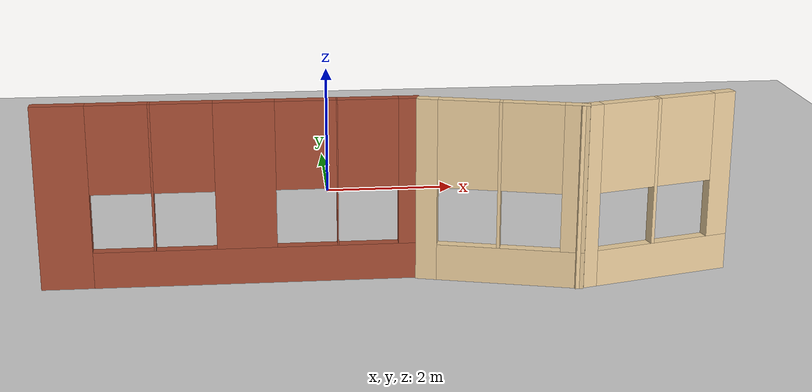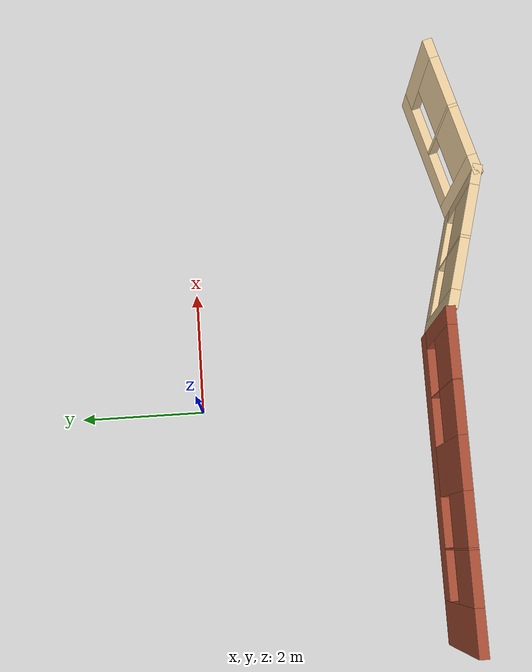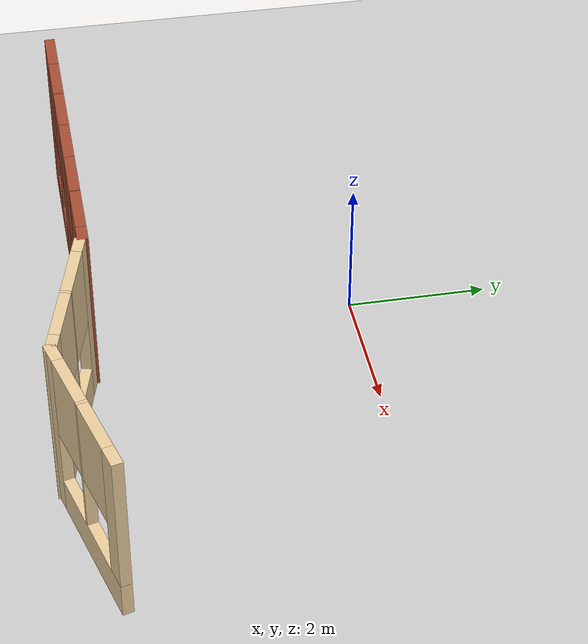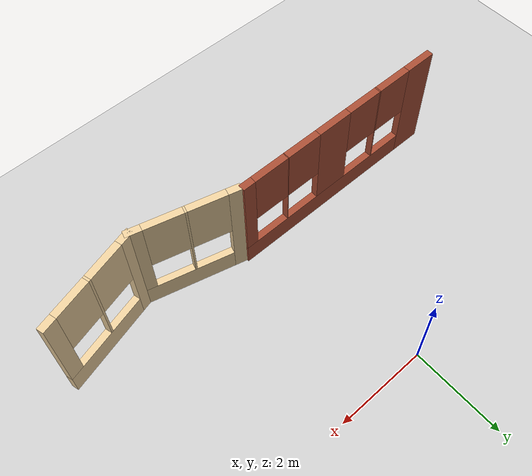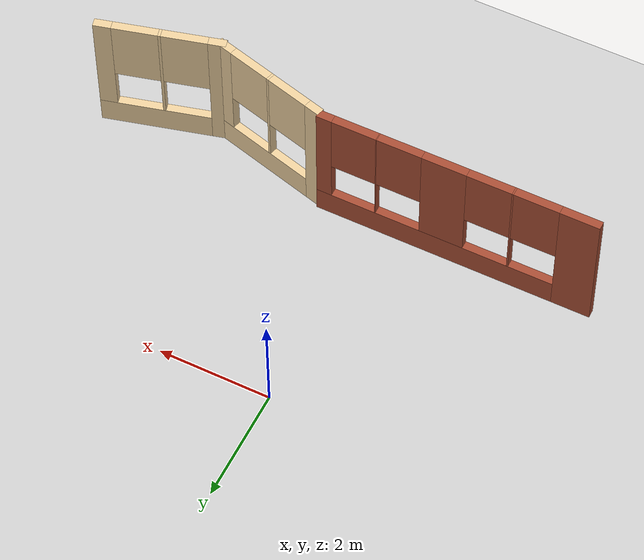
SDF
<sdf version="1.6">
 <world name="default">
  <model name="ground_plane">
   <static>1</static>
   <link name="link">
    <collision name="collision">
     <geometry><plane><normal>0 0 1</normal><size>100 100</size></plane></geometry>
     <surface>
      <contact><collide_bitmask>65535</collide_bitmask></contact>
      <friction><ode><mu>100</mu><mu2>50</mu2></ode></friction>
     </surface>
    </collision>
    <visual name="visual">
     <cast_shadows>0</cast_shadows>
     <geometry><plane><normal>0 0 1</normal><size>100 100</size></plane></geometry>
     <material>
      <script><uri>file://media/materials/scripts/gazebo.material</uri><name>Gazebo/Grey</name></script>
     </material>
    </visual>
   </link>
  </model>
  <model name="building">
   <link name="Wall_10">
    <pose>1.52733 -5.03045 0 0 0 -0.261799</pose>
    <visual name="Wall_10_Visual_2">
     <pose>-0.020899 0 1.5 0 -0 0</pose>
     <geometry><box><size>0.042901 0.15 2</size></box></geometry>
     <material>
      <script><uri>file://media/materials/scripts/gazebo.material</uri><name>Gazebo/Grey</name></script>
      <ambient>0.921569 0.807843 0.615686 1</ambient>
      <shader type="pixel"/>
      <diffuse>0.7 0.7 0.7 1</diffuse>
      <specular>0.01 0.01 0.01 1</specular>
      <emissive>0 0 0 1</emissive>
     </material>
     <meta><layer>0</layer></meta>
    </visual>
    <visual name="Wall_10_Visual_4">
     <pose>-0.442349 0 1.9 0 -0 0</pose>
     <geometry><box><size>0.8 0.15 1.2</size></box></geometry>
     <material>
      <script><uri>file://media/materials/scripts/gazebo.material</uri><name>Gazebo/Grey</name></script>
      <ambient>0.921569 0.807843 0.615686 1</ambient>
      <shader type="pixel"/>
      <diffuse>0.7 0.7 0.7 1</diffuse>
      <specular>0.01 0.01 0.01 1</specular>
      <emissive>0 0 0 1</emissive>
     </material>
     <meta><layer>0</layer></meta>
    </visual>
    <visual name="Wall_10_Visual_5">
     <pose>0.400552 0 1.9 0 -0 0</pose>
     <geometry><box><size>0.8 0.15 1.2</size></box></geometry>
     <material>
      <script><uri>file://media/materials/scripts/gazebo.material</uri><name>Gazebo/Grey</name></script>
      <ambient>0.921569 0.807843 0.615686 1</ambient>
      <shader type="pixel"/>
      <diffuse>0.7 0.7 0.7 1</diffuse>
      <specular>0.01 0.01 0.01 1</specular>
      <emissive>0 0 0 1</emissive>
     </material>
     <meta><layer>0</layer></meta>
    </visual>
    <visual name="Wall_10_Visual_0">
     <pose>-0.983675 0 1.25 0 -0 0</pose>
     <geometry><box><size>0.282651 0.15 2.5</size></box></geometry>
     <material>
      <script><uri>file://media/materials/scripts/gazebo.material</uri><name>Gazebo/Grey</name></script>
      <ambient>0.921569 0.807843 0.615686 1</ambient>
      <shader type="pixel"/>
      <diffuse>0.7 0.7 0.7 1</diffuse>
      <specular>0.01 0.01 0.01 1</specular>
      <emissive>0 0 0 1</emissive>
     </material>
     <meta><layer>0</layer></meta>
    </visual>
    <visual name="Wall_10_Visual_1">
     <pose>0.141325 0 0.25 0 -0 0</pose>
     <geometry><box><size>1.96735 0.15 0.5</size></box></geometry>
     <material>
      <script><uri>file://media/materials/scripts/gazebo.material</uri><name>Gazebo/Grey</name></script>
      <ambient>0.921569 0.807843 0.615686 1</ambient>
      <shader type="pixel"/>
      <diffuse>0.7 0.7 0.7 1</diffuse>
      <specular>0.01 0.01 0.01 1</specular>
      <emissive>0 0 0 1</emissive>
     </material>
     <meta><layer>0</layer></meta>
    </visual>
    <visual name="Wall_10_Visual_3">
     <pose>0.962776 0 1.5 0 -0 0</pose>
     <geometry><box><size>0.324448 0.15 2</size></box></geometry>
     <material>
      <script><uri>file://media/materials/scripts/gazebo.material</uri><name>Gazebo/Grey</name></script>
      <ambient>0.921569 0.807843 0.615686 1</ambient>
      <shader type="pixel"/>
      <diffuse>0.7 0.7 0.7 1</diffuse>
      <specular>0.01 0.01 0.01 1</specular>
      <emissive>0 0 0 1</emissive>
     </material>
     <meta><layer>0</layer></meta>
    </visual>
    <collision name="Wall_10_Collision_1">
     <pose>0.141325 0 0.25 0 -0 0</pose>
     <geometry><box><size>1.96735 0.15 0.5</size></box></geometry>
     <surface>
      <friction>
       <ode><mu>1</mu><mu2>1</mu2><fdir1>0 0 0</fdir1><slip1>0</slip1><slip2>0</slip2></ode>
       <torsional>
        <coefficient>1</coefficient>
        <patch_radius>0</patch_radius>
        <surface_radius>0</surface_radius>
        <use_patch_radius>1</use_patch_radius>
        <ode><slip>0</slip></ode>
       </torsional>
      </friction>
      <bounce><restitution_coefficient>0</restitution_coefficient><threshold>1e+06</threshold></bounce>
      <contact>
       <collide_without_contact>0</collide_without_contact>
       <collide_without_contact_bitmask>1</collide_without_contact_bitmask>
       <collide_bitmask>1</collide_bitmask>
       <ode>
        <soft_cfm>0</soft_cfm>
        <soft_erp>0.2</soft_erp>
        <kp>1e+13</kp>
        <kd>1</kd>
        <max_vel>0.01</max_vel>
        <min_depth>0</min_depth>
       </ode>
       <bullet>
        <split_impulse>1</split_impulse>
        <split_impulse_penetration_threshold>-0.01</split_impulse_penetration_threshold>
        <soft_cfm>0</soft_cfm>
        <soft_erp>0.2</soft_erp>
        <kp>1e+13</kp>
        <kd>1</kd>
       </bullet>
      </contact>
     </surface>
    </collision>
    <collision name="Wall_10_Collision_2">
     <pose>-0.020899 0 1.5 0 -0 0</pose>
     <geometry><box><size>0.042901 0.15 2</size></box></geometry>
     <surface>
      <friction>
       <ode><mu>1</mu><mu2>1</mu2><fdir1>0 0 0</fdir1><slip1>0</slip1><slip2>0</slip2></ode>
       <torsional>
        <coefficient>1</coefficient>
        <patch_radius>0</patch_radius>
        <surface_radius>0</surface_radius>
        <use_patch_radius>1</use_patch_radius>
        <ode><slip>0</slip></ode>
       </torsional>
      </friction>
      <bounce><restitution_coefficient>0</restitution_coefficient><threshold>1e+06</threshold></bounce>
      <contact>
       <collide_without_contact>0</collide_without_contact>
       <collide_without_contact_bitmask>1</collide_without_contact_bitmask>
       <collide_bitmask>1</collide_bitmask>
       <ode>
        <soft_cfm>0</soft_cfm>
        <soft_erp>0.2</soft_erp>
        <kp>1e+13</kp>
        <kd>1</kd>
        <max_vel>0.01</max_vel>
        <min_depth>0</min_depth>
       </ode>
       <bullet>
        <split_impulse>1</split_impulse>
        <split_impulse_penetration_threshold>-0.01</split_impulse_penetration_threshold>
        <soft_cfm>0</soft_cfm>
        <soft_erp>0.2</soft_erp>
        <kp>1e+13</kp>
        <kd>1</kd>
       </bullet>
      </contact>
     </surface>
    </collision>
    <collision name="Wall_10_Collision_3">
     <pose>0.962776 0 1.5 0 -0 0</pose>
     <geometry><box><size>0.324448 0.15 2</size></box></geometry>
     <surface>
      <friction>
       <ode><mu>1</mu><mu2>1</mu2><fdir1>0 0 0</fdir1><slip1>0</slip1><slip2>0</slip2></ode>
       <torsional>
        <coefficient>1</coefficient>
        <patch_radius>0</patch_radius>
        <surface_radius>0</surface_radius>
        <use_patch_radius>1</use_patch_radius>
        <ode><slip>0</slip></ode>
       </torsional>
      </friction>
      <bounce><restitution_coefficient>0</restitution_coefficient><threshold>1e+06</threshold></bounce>
      <contact>
       <collide_without_contact>0</collide_without_contact>
       <collide_without_contact_bitmask>1</collide_without_contact_bitmask>
       <collide_bitmask>1</collide_bitmask>
       <ode>
        <soft_cfm>0</soft_cfm>
        <soft_erp>0.2</soft_erp>
        <kp>1e+13</kp>
        <kd>1</kd>
        <max_vel>0.01</max_vel>
        <min_depth>0</min_depth>
       </ode>
       <bullet>
        <split_impulse>1</split_impulse>
        <split_impulse_penetration_threshold>-0.01</split_impulse_penetration_threshold>
        <soft_cfm>0</soft_cfm>
        <soft_erp>0.2</soft_erp>
        <kp>1e+13</kp>
        <kd>1</kd>
       </bullet>
      </contact>
     </surface>
    </collision>
    <collision name="Wall_10_Collision_5">
     <pose>0.400552 0 1.9 0 -0 0</pose>
     <geometry><box><size>0.8 0.15 1.2</size></box></geometry>
     <surface>
      <friction>
       <ode><mu>1</mu><mu2>1</mu2><fdir1>0 0 0</fdir1><slip1>0</slip1><slip2>0</slip2></ode>
       <torsional>
        <coefficient>1</coefficient>
        <patch_radius>0</patch_radius>
        <surface_radius>0</surface_radius>
        <use_patch_radius>1</use_patch_radius>
        <ode><slip>0</slip></ode>
       </torsional>
      </friction>
      <bounce><restitution_coefficient>0</restitution_coefficient><threshold>1e+06</threshold></bounce>
      <contact>
       <collide_without_contact>0</collide_without_contact>
       <collide_without_contact_bitmask>1</collide_without_contact_bitmask>
       <collide_bitmask>1</collide_bitmask>
       <ode>
        <soft_cfm>0</soft_cfm>
        <soft_erp>0.2</soft_erp>
        <kp>1e+13</kp>
        <kd>1</kd>
        <max_vel>0.01</max_vel>
        <min_depth>0</min_depth>
       </ode>
       <bullet>
        <split_impulse>1</split_impulse>
        <split_impulse_penetration_threshold>-0.01</split_impulse_penetration_threshold>
        <soft_cfm>0</soft_cfm>
        <soft_erp>0.2</soft_erp>
        <kp>1e+13</kp>
        <kd>1</kd>
       </bullet>
      </contact>
     </surface>
    </collision>
    <collision name="Wall_10_Collision_4">
     <pose>-0.442349 0 1.9 0 -0 0</pose>
     <geometry><box><size>0.8 0.15 1.2</size></box></geometry>
     <surface>
      <friction>
       <ode><mu>1</mu><mu2>1</mu2><fdir1>0 0 0</fdir1><slip1>0</slip1><slip2>0</slip2></ode>
       <torsional>
        <coefficient>1</coefficient>
        <patch_radius>0</patch_radius>
        <surface_radius>0</surface_radius>
        <use_patch_radius>1</use_patch_radius>
        <ode><slip>0</slip></ode>
       </torsional>
      </friction>
      <bounce><restitution_coefficient>0</restitution_coefficient><threshold>1e+06</threshold></bounce>
      <contact>
       <collide_without_contact>0</collide_without_contact>
       <collide_without_contact_bitmask>1</collide_without_contact_bitmask>
       <collide_bitmask>1</collide_bitmask>
       <ode>
        <soft_cfm>0</soft_cfm>
        <soft_erp>0.2</soft_erp>
        <kp>1e+13</kp>
        <kd>1</kd>
        <max_vel>0.01</max_vel>
        <min_depth>0</min_depth>
       </ode>
       <bullet>
        <split_impulse>1</split_impulse>
        <split_impulse_penetration_threshold>-0.01</split_impulse_penetration_threshold>
        <soft_cfm>0</soft_cfm>
        <soft_erp>0.2</soft_erp>
        <kp>1e+13</kp>
        <kd>1</kd>
       </bullet>
      </contact>
     </surface>
    </collision>
    <collision name="Wall_10_Collision_0">
     <pose>-0.983675 0 1.25 0 -0 0</pose>
     <geometry><box><size>0.282651 0.15 2.5</size></box></geometry>
     <surface>
      <friction>
       <ode><mu>1</mu><mu2>1</mu2><fdir1>0 0 0</fdir1><slip1>0</slip1><slip2>0</slip2></ode>
       <torsional>
        <coefficient>1</coefficient>
        <patch_radius>0</patch_radius>
        <surface_radius>0</surface_radius>
        <use_patch_radius>1</use_patch_radius>
        <ode><slip>0</slip></ode>
       </torsional>
      </friction>
      <bounce><restitution_coefficient>0</restitution_coefficient><threshold>1e+06</threshold></bounce>
      <contact>
       <collide_without_contact>0</collide_without_contact>
       <collide_without_contact_bitmask>1</collide_without_contact_bitmask>
       <collide_bitmask>1</collide_bitmask>
       <ode>
        <soft_cfm>0</soft_cfm>
        <soft_erp>0.2</soft_erp>
        <kp>1e+13</kp>
        <kd>1</kd>
        <max_vel>0.01</max_vel>
        <min_depth>0</min_depth>
       </ode>
       <bullet>
        <split_impulse>1</split_impulse>
        <split_impulse_penetration_threshold>-0.01</split_impulse_penetration_threshold>
        <soft_cfm>0</soft_cfm>
        <soft_erp>0.2</soft_erp>
        <kp>1e+13</kp>
        <kd>1</kd>
       </bullet>
      </contact>
     </surface>
    </collision>
   </link>
   <link name="Wall_11">
    <pose>3.56509 -5.03059 0 0 -0 0.259392</pose>
    <visual name="Wall_11_Visual_3">
     <pose>0.978893 0 1.5 0 -0 0</pose>
     <geometry><box><size>0.310149 0.15 2</size></box></geometry>
     <material>
      <script><uri>file://media/materials/scripts/gazebo.material</uri><name>Gazebo/Grey</name></script>
      <ambient>0.921569 0.807843 0.615686 1</ambient>
      <shader type="pixel"/>
      <diffuse>0.7 0.7 0.7 1</diffuse>
      <specular>0.01 0.01 0.01 1</specular>
      <emissive>0 0 0 1</emissive>
     </material>
     <meta><layer>0</layer></meta>
    </visual>
    <visual name="Wall_11_Visual_5">
     <pose>0.423818 0 1.9 0 -0 0</pose>
     <geometry><box><size>0.8 0.15 1.2</size></box></geometry>
     <material>
      <script><uri>file://media/materials/scripts/gazebo.material</uri><name>Gazebo/Grey</name></script>
      <ambient>0.921569 0.807843 0.615686 1</ambient>
      <shader type="pixel"/>
      <diffuse>0.7 0.7 0.7 1</diffuse>
      <specular>0.01 0.01 0.01 1</specular>
      <emissive>0 0 0 1</emissive>
     </material>
     <meta><layer>0</layer></meta>
    </visual>
    <visual name="Wall_11_Visual_2">
     <pose>0.000369 0 1.5 0 -0 0</pose>
     <geometry><box><size>0.0469 0.15 2</size></box></geometry>
     <material>
      <script><uri>file://media/materials/scripts/gazebo.material</uri><name>Gazebo/Grey</name></script>
      <ambient>0.921569 0.807843 0.615686 1</ambient>
      <shader type="pixel"/>
      <diffuse>0.7 0.7 0.7 1</diffuse>
      <specular>0.01 0.01 0.01 1</specular>
      <emissive>0 0 0 1</emissive>
     </material>
     <meta><layer>0</layer></meta>
    </visual>
    <visual name="Wall_11_Visual_0">
     <pose>-0.978524 0 1.25 0 -0 0</pose>
     <geometry><box><size>0.310887 0.15 2.5</size></box></geometry>
     <material>
      <script><uri>file://media/materials/scripts/gazebo.material</uri><name>Gazebo/Grey</name></script>
      <ambient>0.921569 0.807843 0.615686 1</ambient>
      <shader type="pixel"/>
      <diffuse>0.7 0.7 0.7 1</diffuse>
      <specular>0.01 0.01 0.01 1</specular>
      <emissive>0 0 0 1</emissive>
     </material>
     <meta><layer>0</layer></meta>
    </visual>
    <visual name="Wall_11_Visual_4">
     <pose>-0.423081 0 1.9 0 -0 0</pose>
     <geometry><box><size>0.8 0.15 1.2</size></box></geometry>
     <material>
      <script><uri>file://media/materials/scripts/gazebo.material</uri><name>Gazebo/Grey</name></script>
      <ambient>0.921569 0.807843 0.615686 1</ambient>
      <shader type="pixel"/>
      <diffuse>0.7 0.7 0.7 1</diffuse>
      <specular>0.01 0.01 0.01 1</specular>
      <emissive>0 0 0 1</emissive>
     </material>
     <meta><layer>0</layer></meta>
    </visual>
    <visual name="Wall_11_Visual_1">
     <pose>0.155443 0 0.25 0 -0 0</pose>
     <geometry><box><size>1.95705 0.15 0.5</size></box></geometry>
     <material>
      <script><uri>file://media/materials/scripts/gazebo.material</uri><name>Gazebo/Grey</name></script>
      <ambient>0.921569 0.807843 0.615686 1</ambient>
      <shader type="pixel"/>
      <diffuse>0.7 0.7 0.7 1</diffuse>
      <specular>0.01 0.01 0.01 1</specular>
      <emissive>0 0 0 1</emissive>
     </material>
     <meta><layer>0</layer></meta>
    </visual>
    <collision name="Wall_11_Collision_0">
     <pose>-0.978524 0 1.25 0 -0 0</pose>
     <geometry><box><size>0.310887 0.15 2.5</size></box></geometry>
     <surface>
      <friction>
       <ode><mu>1</mu><mu2>1</mu2><fdir1>0 0 0</fdir1><slip1>0</slip1><slip2>0</slip2></ode>
       <torsional>
        <coefficient>1</coefficient>
        <patch_radius>0</patch_radius>
        <surface_radius>0</surface_radius>
        <use_patch_radius>1</use_patch_radius>
        <ode><slip>0</slip></ode>
       </torsional>
      </friction>
      <bounce><restitution_coefficient>0</restitution_coefficient><threshold>1e+06</threshold></bounce>
      <contact>
       <collide_without_contact>0</collide_without_contact>
       <collide_without_contact_bitmask>1</collide_without_contact_bitmask>
       <collide_bitmask>1</collide_bitmask>
       <ode>
        <soft_cfm>0</soft_cfm>
        <soft_erp>0.2</soft_erp>
        <kp>1e+13</kp>
        <kd>1</kd>
        <max_vel>0.01</max_vel>
        <min_depth>0</min_depth>
       </ode>
       <bullet>
        <split_impulse>1</split_impulse>
        <split_impulse_penetration_threshold>-0.01</split_impulse_penetration_threshold>
        <soft_cfm>0</soft_cfm>
        <soft_erp>0.2</soft_erp>
        <kp>1e+13</kp>
        <kd>1</kd>
       </bullet>
      </contact>
     </surface>
    </collision>
    <collision name="Wall_11_Collision_3">
     <pose>0.978893 0 1.5 0 -0 0</pose>
     <geometry><box><size>0.310149 0.15 2</size></box></geometry>
     <surface>
      <friction>
       <ode><mu>1</mu><mu2>1</mu2><fdir1>0 0 0</fdir1><slip1>0</slip1><slip2>0</slip2></ode>
       <torsional>
        <coefficient>1</coefficient>
        <patch_radius>0</patch_radius>
        <surface_radius>0</surface_radius>
        <use_patch_radius>1</use_patch_radius>
        <ode><slip>0</slip></ode>
       </torsional>
      </friction>
      <bounce><restitution_coefficient>0</restitution_coefficient><threshold>1e+06</threshold></bounce>
      <contact>
       <collide_without_contact>0</collide_without_contact>
       <collide_without_contact_bitmask>1</collide_without_contact_bitmask>
       <collide_bitmask>1</collide_bitmask>
       <ode>
        <soft_cfm>0</soft_cfm>
        <soft_erp>0.2</soft_erp>
        <kp>1e+13</kp>
        <kd>1</kd>
        <max_vel>0.01</max_vel>
        <min_depth>0</min_depth>
       </ode>
       <bullet>
        <split_impulse>1</split_impulse>
        <split_impulse_penetration_threshold>-0.01</split_impulse_penetration_threshold>
        <soft_cfm>0</soft_cfm>
        <soft_erp>0.2</soft_erp>
        <kp>1e+13</kp>
        <kd>1</kd>
       </bullet>
      </contact>
     </surface>
    </collision>
    <collision name="Wall_11_Collision_1">
     <pose>0.155443 0 0.25 0 -0 0</pose>
     <geometry><box><size>1.95705 0.15 0.5</size></box></geometry>
     <surface>
      <friction>
       <ode><mu>1</mu><mu2>1</mu2><fdir1>0 0 0</fdir1><slip1>0</slip1><slip2>0</slip2></ode>
       <torsional>
        <coefficient>1</coefficient>
        <patch_radius>0</patch_radius>
        <surface_radius>0</surface_radius>
        <use_patch_radius>1</use_patch_radius>
        <ode><slip>0</slip></ode>
       </torsional>
      </friction>
      <bounce><restitution_coefficient>0</restitution_coefficient><threshold>1e+06</threshold></bounce>
      <contact>
       <collide_without_contact>0</collide_without_contact>
       <collide_without_contact_bitmask>1</collide_without_contact_bitmask>
       <collide_bitmask>1</collide_bitmask>
       <ode>
        <soft_cfm>0</soft_cfm>
        <soft_erp>0.2</soft_erp>
        <kp>1e+13</kp>
        <kd>1</kd>
        <max_vel>0.01</max_vel>
        <min_depth>0</min_depth>
       </ode>
       <bullet>
        <split_impulse>1</split_impulse>
        <split_impulse_penetration_threshold>-0.01</split_impulse_penetration_threshold>
        <soft_cfm>0</soft_cfm>
        <soft_erp>0.2</soft_erp>
        <kp>1e+13</kp>
        <kd>1</kd>
       </bullet>
      </contact>
     </surface>
    </collision>
    <collision name="Wall_11_Collision_2">
     <pose>0.000369 0 1.5 0 -0 0</pose>
     <geometry><box><size>0.0469 0.15 2</size></box></geometry>
     <surface>
      <friction>
       <ode><mu>1</mu><mu2>1</mu2><fdir1>0 0 0</fdir1><slip1>0</slip1><slip2>0</slip2></ode>
       <torsional>
        <coefficient>1</coefficient>
        <patch_radius>0</patch_radius>
        <surface_radius>0</surface_radius>
        <use_patch_radius>1</use_patch_radius>
        <ode><slip>0</slip></ode>
       </torsional>
      </friction>
      <bounce><restitution_coefficient>0</restitution_coefficient><threshold>1e+06</threshold></bounce>
      <contact>
       <collide_without_contact>0</collide_without_contact>
       <collide_without_contact_bitmask>1</collide_without_contact_bitmask>
       <collide_bitmask>1</collide_bitmask>
       <ode>
        <soft_cfm>0</soft_cfm>
        <soft_erp>0.2</soft_erp>
        <kp>1e+13</kp>
        <kd>1</kd>
        <max_vel>0.01</max_vel>
        <min_depth>0</min_depth>
       </ode>
       <bullet>
        <split_impulse>1</split_impulse>
        <split_impulse_penetration_threshold>-0.01</split_impulse_penetration_threshold>
        <soft_cfm>0</soft_cfm>
        <soft_erp>0.2</soft_erp>
        <kp>1e+13</kp>
        <kd>1</kd>
       </bullet>
      </contact>
     </surface>
    </collision>
    <collision name="Wall_11_Collision_4">
     <pose>-0.423081 0 1.9 0 -0 0</pose>
     <geometry><box><size>0.8 0.15 1.2</size></box></geometry>
     <surface>
      <friction>
       <ode><mu>1</mu><mu2>1</mu2><fdir1>0 0 0</fdir1><slip1>0</slip1><slip2>0</slip2></ode>
       <torsional>
        <coefficient>1</coefficient>
        <patch_radius>0</patch_radius>
        <surface_radius>0</surface_radius>
        <use_patch_radius>1</use_patch_radius>
        <ode><slip>0</slip></ode>
       </torsional>
      </friction>
      <bounce><restitution_coefficient>0</restitution_coefficient><threshold>1e+06</threshold></bounce>
      <contact>
       <collide_without_contact>0</collide_without_contact>
       <collide_without_contact_bitmask>1</collide_without_contact_bitmask>
       <collide_bitmask>1</collide_bitmask>
       <ode>
        <soft_cfm>0</soft_cfm>
        <soft_erp>0.2</soft_erp>
        <kp>1e+13</kp>
        <kd>1</kd>
        <max_vel>0.01</max_vel>
        <min_depth>0</min_depth>
       </ode>
       <bullet>
        <split_impulse>1</split_impulse>
        <split_impulse_penetration_threshold>-0.01</split_impulse_penetration_threshold>
        <soft_cfm>0</soft_cfm>
        <soft_erp>0.2</soft_erp>
        <kp>1e+13</kp>
        <kd>1</kd>
       </bullet>
      </contact>
     </surface>
    </collision>
    <collision name="Wall_11_Collision_5">
     <pose>0.423818 0 1.9 0 -0 0</pose>
     <geometry><box><size>0.8 0.15 1.2</size></box></geometry>
     <surface>
      <friction>
       <ode><mu>1</mu><mu2>1</mu2><fdir1>0 0 0</fdir1><slip1>0</slip1><slip2>0</slip2></ode>
       <torsional>
        <coefficient>1</coefficient>
        <patch_radius>0</patch_radius>
        <surface_radius>0</surface_radius>
        <use_patch_radius>1</use_patch_radius>
        <ode><slip>0</slip></ode>
       </torsional>
      </friction>
      <bounce><restitution_coefficient>0</restitution_coefficient><threshold>1e+06</threshold></bounce>
      <contact>
       <collide_without_contact>0</collide_without_contact>
       <collide_without_contact_bitmask>1</collide_without_contact_bitmask>
       <collide_bitmask>1</collide_bitmask>
       <ode>
        <soft_cfm>0</soft_cfm>
        <soft_erp>0.2</soft_erp>
        <kp>1e+13</kp>
        <kd>1</kd>
        <max_vel>0.01</max_vel>
        <min_depth>0</min_depth>
       </ode>
       <bullet>
        <split_impulse>1</split_impulse>
        <split_impulse_penetration_threshold>-0.01</split_impulse_penetration_threshold>
        <soft_cfm>0</soft_cfm>
        <soft_erp>0.2</soft_erp>
        <kp>1e+13</kp>
        <kd>1</kd>
       </bullet>
      </contact>
     </surface>
    </collision>
   </link>
   <link name="Wall_26">
    <pose>-2.03386 -4.70697 0 0 -0 0</pose>
    <visual name="Wall_26_Visual_7">
     <pose>-0.582527 0 1.9 0 -0 0</pose>
     <geometry><box><size>0.8 0.15 1.2</size></box></geometry>
     <material>
      <script><uri>file://media/materials/scripts/gazebo.material</uri><name>Gazebo/Bricks</name></script>
      <ambient>0.435294 0.796078 0.67451 1</ambient>
      <shader type="pixel"/>
      <diffuse>1 1 1 1</diffuse>
      <specular>0.2 0.2 0.2 1</specular>
      <emissive>0 0 0 1</emissive>
     </material>
     <meta><layer>0</layer></meta>
    </visual>
    <visual name="Wall_26_Visual_5">
     <pose>2.36886 0 1.5 0 -0 0</pose>
     <geometry><box><size>0.27736 0.15 2</size></box></geometry>
     <material>
      <script><uri>file://media/materials/scripts/gazebo.material</uri><name>Gazebo/Bricks</name></script>
      <ambient>0.435294 0.796078 0.67451 1</ambient>
      <shader type="pixel"/>
      <diffuse>1 1 1 1</diffuse>
      <specular>0.2 0.2 0.2 1</specular>
      <emissive>0 0 0 1</emissive>
     </material>
     <meta><layer>0</layer></meta>
    </visual>
    <visual name="Wall_26_Visual_6">
     <pose>-1.4116 0 1.9 0 -0 0</pose>
     <geometry><box><size>0.8 0.15 1.2</size></box></geometry>
     <material>
      <script><uri>file://media/materials/scripts/gazebo.material</uri><name>Gazebo/Bricks</name></script>
      <ambient>0.435294 0.796078 0.67451 1</ambient>
      <shader type="pixel"/>
      <diffuse>1 1 1 1</diffuse>
      <specular>0.2 0.2 0.2 1</specular>
      <emissive>0 0 0 1</emissive>
     </material>
     <meta><layer>0</layer></meta>
    </visual>
    <visual name="Wall_26_Visual_9">
     <pose>1.83018 0 1.9 0 -0 0</pose>
     <geometry><box><size>0.8 0.15 1.2</size></box></geometry>
     <material>
      <script><uri>file://media/materials/scripts/gazebo.material</uri><name>Gazebo/Bricks</name></script>
      <ambient>0.435294 0.796078 0.67451 1</ambient>
      <shader type="pixel"/>
      <diffuse>1 1 1 1</diffuse>
      <specular>0.2 0.2 0.2 1</specular>
      <emissive>0 0 0 1</emissive>
     </material>
     <meta><layer>0</layer></meta>
    </visual>
    <visual name="Wall_26_Visual_1">
     <pose>0.347974 0 0.25 0 -0 0</pose>
     <geometry><box><size>4.31914 0.15 0.5</size></box></geometry>
     <material>
      <script><uri>file://media/materials/scripts/gazebo.material</uri><name>Gazebo/Bricks</name></script>
      <ambient>0.435294 0.796078 0.67451 1</ambient>
      <shader type="pixel"/>
      <diffuse>1 1 1 1</diffuse>
      <specular>0.2 0.2 0.2 1</specular>
      <emissive>0 0 0 1</emissive>
     </material>
     <meta><layer>0</layer></meta>
    </visual>
    <visual name="Wall_26_Visual_3">
     <pose>0.216063 0 1.5 0 -0 0</pose>
     <geometry><box><size>0.797179 0.15 2</size></box></geometry>
     <material>
      <script><uri>file://media/materials/scripts/gazebo.material</uri><name>Gazebo/Bricks</name></script>
      <ambient>0.435294 0.796078 0.67451 1</ambient>
      <shader type="pixel"/>
      <diffuse>1 1 1 1</diffuse>
      <specular>0.2 0.2 0.2 1</specular>
      <emissive>0 0 0 1</emissive>
     </material>
     <meta><layer>0</layer></meta>
    </visual>
    <visual name="Wall_26_Visual_0">
     <pose>-2.15957 0 1.25 0 -0 0</pose>
     <geometry><box><size>0.695948 0.15 2.5</size></box></geometry>
     <material>
      <script><uri>file://media/materials/scripts/gazebo.material</uri><name>Gazebo/Bricks</name></script>
      <ambient>0.435294 0.796078 0.67451 1</ambient>
      <shader type="pixel"/>
      <diffuse>1 1 1 1</diffuse>
      <specular>0.2 0.2 0.2 1</specular>
      <emissive>0 0 0 1</emissive>
     </material>
     <meta><layer>0</layer></meta>
    </visual>
    <visual name="Wall_26_Visual_8">
     <pose>1.01465 0 1.9 0 -0 0</pose>
     <geometry><box><size>0.8 0.15 1.2</size></box></geometry>
     <material>
      <script><uri>file://media/materials/scripts/gazebo.material</uri><name>Gazebo/Bricks</name></script>
      <ambient>0.435294 0.796078 0.67451 1</ambient>
      <shader type="pixel"/>
      <diffuse>1 1 1 1</diffuse>
      <specular>0.2 0.2 0.2 1</specular>
      <emissive>0 0 0 1</emissive>
     </material>
     <meta><layer>0</layer></meta>
    </visual>
    <visual name="Wall_26_Visual_2">
     <pose>-0.997061 0 1.5 0 -0 0</pose>
     <geometry><box><size>0.02907 0.15 2</size></box></geometry>
     <material>
      <script><uri>file://media/materials/scripts/gazebo.material</uri><name>Gazebo/Bricks</name></script>
      <ambient>0.435294 0.796078 0.67451 1</ambient>
      <shader type="pixel"/>
      <diffuse>1 1 1 1</diffuse>
      <specular>0.2 0.2 0.2 1</specular>
      <emissive>0 0 0 1</emissive>
     </material>
     <meta><layer>0</layer></meta>
    </visual>
    <visual name="Wall_26_Visual_4">
     <pose>1.42242 0 1.5 0 -0 0</pose>
     <geometry><box><size>0.015532 0.15 2</size></box></geometry>
     <material>
      <script><uri>file://media/materials/scripts/gazebo.material</uri><name>Gazebo/Bricks</name></script>
      <ambient>0.435294 0.796078 0.67451 1</ambient>
      <shader type="pixel"/>
      <diffuse>1 1 1 1</diffuse>
      <specular>0.2 0.2 0.2 1</specular>
      <emissive>0 0 0 1</emissive>
     </material>
     <meta><layer>0</layer></meta>
    </visual>
    <collision name="Wall_26_Collision_3">
     <pose>0.216063 0 1.5 0 -0 0</pose>
     <geometry><box><size>0.797179 0.15 2</size></box></geometry>
     <surface>
      <friction>
       <ode><mu>1</mu><mu2>1</mu2><fdir1>0 0 0</fdir1><slip1>0</slip1><slip2>0</slip2></ode>
       <torsional>
        <coefficient>1</coefficient>
        <patch_radius>0</patch_radius>
        <surface_radius>0</surface_radius>
        <use_patch_radius>1</use_patch_radius>
        <ode><slip>0</slip></ode>
       </torsional>
      </friction>
      <bounce><restitution_coefficient>0</restitution_coefficient><threshold>1e+06</threshold></bounce>
      <contact>
       <collide_without_contact>0</collide_without_contact>
       <collide_without_contact_bitmask>1</collide_without_contact_bitmask>
       <collide_bitmask>1</collide_bitmask>
       <ode>
        <soft_cfm>0</soft_cfm>
        <soft_erp>0.2</soft_erp>
        <kp>1e+13</kp>
        <kd>1</kd>
        <max_vel>0.01</max_vel>
        <min_depth>0</min_depth>
       </ode>
       <bullet>
        <split_impulse>1</split_impulse>
        <split_impulse_penetration_threshold>-0.01</split_impulse_penetration_threshold>
        <soft_cfm>0</soft_cfm>
        <soft_erp>0.2</soft_erp>
        <kp>1e+13</kp>
        <kd>1</kd>
       </bullet>
      </contact>
     </surface>
    </collision>
    <collision name="Wall_26_Collision_8">
     <pose>1.01465 0 1.9 0 -0 0</pose>
     <geometry><box><size>0.8 0.15 1.2</size></box></geometry>
     <surface>
      <friction>
       <ode><mu>1</mu><mu2>1</mu2><fdir1>0 0 0</fdir1><slip1>0</slip1><slip2>0</slip2></ode>
       <torsional>
        <coefficient>1</coefficient>
        <patch_radius>0</patch_radius>
        <surface_radius>0</surface_radius>
        <use_patch_radius>1</use_patch_radius>
        <ode><slip>0</slip></ode>
       </torsional>
      </friction>
      <bounce><restitution_coefficient>0</restitution_coefficient><threshold>1e+06</threshold></bounce>
      <contact>
       <collide_without_contact>0</collide_without_contact>
       <collide_without_contact_bitmask>1</collide_without_contact_bitmask>
       <collide_bitmask>1</collide_bitmask>
       <ode>
        <soft_cfm>0</soft_cfm>
        <soft_erp>0.2</soft_erp>
        <kp>1e+13</kp>
        <kd>1</kd>
        <max_vel>0.01</max_vel>
        <min_depth>0</min_depth>
       </ode>
       <bullet>
        <split_impulse>1</split_impulse>
        <split_impulse_penetration_threshold>-0.01</split_impulse_penetration_threshold>
        <soft_cfm>0</soft_cfm>
        <soft_erp>0.2</soft_erp>
        <kp>1e+13</kp>
        <kd>1</kd>
       </bullet>
      </contact>
     </surface>
    </collision>
    <collision name="Wall_26_Collision_6">
     <pose>-1.4116 0 1.9 0 -0 0</pose>
     <geometry><box><size>0.8 0.15 1.2</size></box></geometry>
     <surface>
      <friction>
       <ode><mu>1</mu><mu2>1</mu2><fdir1>0 0 0</fdir1><slip1>0</slip1><slip2>0</slip2></ode>
       <torsional>
        <coefficient>1</coefficient>
        <patch_radius>0</patch_radius>
        <surface_radius>0</surface_radius>
        <use_patch_radius>1</use_patch_radius>
        <ode><slip>0</slip></ode>
       </torsional>
      </friction>
      <bounce><restitution_coefficient>0</restitution_coefficient><threshold>1e+06</threshold></bounce>
      <contact>
       <collide_without_contact>0</collide_without_contact>
       <collide_without_contact_bitmask>1</collide_without_contact_bitmask>
       <collide_bitmask>1</collide_bitmask>
       <ode>
        <soft_cfm>0</soft_cfm>
        <soft_erp>0.2</soft_erp>
        <kp>1e+13</kp>
        <kd>1</kd>
        <max_vel>0.01</max_vel>
        <min_depth>0</min_depth>
       </ode>
       <bullet>
        <split_impulse>1</split_impulse>
        <split_impulse_penetration_threshold>-0.01</split_impulse_penetration_threshold>
        <soft_cfm>0</soft_cfm>
        <soft_erp>0.2</soft_erp>
        <kp>1e+13</kp>
        <kd>1</kd>
       </bullet>
      </contact>
     </surface>
    </collision>
    <collision name="Wall_26_Collision_5">
     <pose>2.36886 0 1.5 0 -0 0</pose>
     <geometry><box><size>0.27736 0.15 2</size></box></geometry>
     <surface>
      <friction>
       <ode><mu>1</mu><mu2>1</mu2><fdir1>0 0 0</fdir1><slip1>0</slip1><slip2>0</slip2></ode>
       <torsional>
        <coefficient>1</coefficient>
        <patch_radius>0</patch_radius>
        <surface_radius>0</surface_radius>
        <use_patch_radius>1</use_patch_radius>
        <ode><slip>0</slip></ode>
       </torsional>
      </friction>
      <bounce><restitution_coefficient>0</restitution_coefficient><threshold>1e+06</threshold></bounce>
      <contact>
       <collide_without_contact>0</collide_without_contact>
       <collide_without_contact_bitmask>1</collide_without_contact_bitmask>
       <collide_bitmask>1</collide_bitmask>
       <ode>
        <soft_cfm>0</soft_cfm>
        <soft_erp>0.2</soft_erp>
        <kp>1e+13</kp>
        <kd>1</kd>
        <max_vel>0.01</max_vel>
        <min_depth>0</min_depth>
       </ode>
       <bullet>
        <split_impulse>1</split_impulse>
        <split_impulse_penetration_threshold>-0.01</split_impulse_penetration_threshold>
        <soft_cfm>0</soft_cfm>
        <soft_erp>0.2</soft_erp>
        <kp>1e+13</kp>
        <kd>1</kd>
       </bullet>
      </contact>
     </surface>
    </collision>
    <collision name="Wall_26_Collision_1">
     <pose>0.347974 0 0.25 0 -0 0</pose>
     <geometry><box><size>4.31914 0.15 0.5</size></box></geometry>
     <surface>
      <friction>
       <ode><mu>1</mu><mu2>1</mu2><fdir1>0 0 0</fdir1><slip1>0</slip1><slip2>0</slip2></ode>
       <torsional>
        <coefficient>1</coefficient>
        <patch_radius>0</patch_radius>
        <surface_radius>0</surface_radius>
        <use_patch_radius>1</use_patch_radius>
        <ode><slip>0</slip></ode>
       </torsional>
      </friction>
      <bounce><restitution_coefficient>0</restitution_coefficient><threshold>1e+06</threshold></bounce>
      <contact>
       <collide_without_contact>0</collide_without_contact>
       <collide_without_contact_bitmask>1</collide_without_contact_bitmask>
       <collide_bitmask>1</collide_bitmask>
       <ode>
        <soft_cfm>0</soft_cfm>
        <soft_erp>0.2</soft_erp>
        <kp>1e+13</kp>
        <kd>1</kd>
        <max_vel>0.01</max_vel>
        <min_depth>0</min_depth>
       </ode>
       <bullet>
        <split_impulse>1</split_impulse>
        <split_impulse_penetration_threshold>-0.01</split_impulse_penetration_threshold>
        <soft_cfm>0</soft_cfm>
        <soft_erp>0.2</soft_erp>
        <kp>1e+13</kp>
        <kd>1</kd>
       </bullet>
      </contact>
     </surface>
    </collision>
    <collision name="Wall_26_Collision_4">
     <pose>1.42242 0 1.5 0 -0 0</pose>
     <geometry><box><size>0.015532 0.15 2</size></box></geometry>
     <surface>
      <friction>
       <ode><mu>1</mu><mu2>1</mu2><fdir1>0 0 0</fdir1><slip1>0</slip1><slip2>0</slip2></ode>
       <torsional>
        <coefficient>1</coefficient>
        <patch_radius>0</patch_radius>
        <surface_radius>0</surface_radius>
        <use_patch_radius>1</use_patch_radius>
        <ode><slip>0</slip></ode>
       </torsional>
      </friction>
      <bounce><restitution_coefficient>0</restitution_coefficient><threshold>1e+06</threshold></bounce>
      <contact>
       <collide_without_contact>0</collide_without_contact>
       <collide_without_contact_bitmask>1</collide_without_contact_bitmask>
       <collide_bitmask>1</collide_bitmask>
       <ode>
        <soft_cfm>0</soft_cfm>
        <soft_erp>0.2</soft_erp>
        <kp>1e+13</kp>
        <kd>1</kd>
        <max_vel>0.01</max_vel>
        <min_depth>0</min_depth>
       </ode>
       <bullet>
        <split_impulse>1</split_impulse>
        <split_impulse_penetration_threshold>-0.01</split_impulse_penetration_threshold>
        <soft_cfm>0</soft_cfm>
        <soft_erp>0.2</soft_erp>
        <kp>1e+13</kp>
        <kd>1</kd>
       </bullet>
      </contact>
     </surface>
    </collision>
    <collision name="Wall_26_Collision_0">
     <pose>-2.15957 0 1.25 0 -0 0</pose>
     <geometry><box><size>0.695948 0.15 2.5</size></box></geometry>
     <surface>
      <friction>
       <ode><mu>1</mu><mu2>1</mu2><fdir1>0 0 0</fdir1><slip1>0</slip1><slip2>0</slip2></ode>
       <torsional>
        <coefficient>1</coefficient>
        <patch_radius>0</patch_radius>
        <surface_radius>0</surface_radius>
        <use_patch_radius>1</use_patch_radius>
        <ode><slip>0</slip></ode>
       </torsional>
      </friction>
      <bounce><restitution_coefficient>0</restitution_coefficient><threshold>1e+06</threshold></bounce>
      <contact>
       <collide_without_contact>0</collide_without_contact>
       <collide_without_contact_bitmask>1</collide_without_contact_bitmask>
       <collide_bitmask>1</collide_bitmask>
       <ode>
        <soft_cfm>0</soft_cfm>
        <soft_erp>0.2</soft_erp>
        <kp>1e+13</kp>
        <kd>1</kd>
        <max_vel>0.01</max_vel>
        <min_depth>0</min_depth>
       </ode>
       <bullet>
        <split_impulse>1</split_impulse>
        <split_impulse_penetration_threshold>-0.01</split_impulse_penetration_threshold>
        <soft_cfm>0</soft_cfm>
        <soft_erp>0.2</soft_erp>
        <kp>1e+13</kp>
        <kd>1</kd>
       </bullet>
      </contact>
     </surface>
    </collision>
    <collision name="Wall_26_Collision_7">
     <pose>-0.582527 0 1.9 0 -0 0</pose>
     <geometry><box><size>0.8 0.15 1.2</size></box></geometry>
     <surface>
      <friction>
       <ode><mu>1</mu><mu2>1</mu2><fdir1>0 0 0</fdir1><slip1>0</slip1><slip2>0</slip2></ode>
       <torsional>
        <coefficient>1</coefficient>
        <patch_radius>0</patch_radius>
        <surface_radius>0</surface_radius>
        <use_patch_radius>1</use_patch_radius>
        <ode><slip>0</slip></ode>
       </torsional>
      </friction>
      <bounce><restitution_coefficient>0</restitution_coefficient><threshold>1e+06</threshold></bounce>
      <contact>
       <collide_without_contact>0</collide_without_contact>
       <collide_without_contact_bitmask>1</collide_without_contact_bitmask>
       <collide_bitmask>1</collide_bitmask>
       <ode>
        <soft_cfm>0</soft_cfm>
        <soft_erp>0.2</soft_erp>
        <kp>1e+13</kp>
        <kd>1</kd>
        <max_vel>0.01</max_vel>
        <min_depth>0</min_depth>
       </ode>
       <bullet>
        <split_impulse>1</split_impulse>
        <split_impulse_penetration_threshold>-0.01</split_impulse_penetration_threshold>
        <soft_cfm>0</soft_cfm>
        <soft_erp>0.2</soft_erp>
        <kp>1e+13</kp>
        <kd>1</kd>
       </bullet>
      </contact>
     </surface>
    </collision>
    <collision name="Wall_26_Collision_2">
     <pose>-0.997061 0 1.5 0 -0 0</pose>
     <geometry><box><size>0.02907 0.15 2</size></box></geometry>
     <surface>
      <friction>
       <ode><mu>1</mu><mu2>1</mu2><fdir1>0 0 0</fdir1><slip1>0</slip1><slip2>0</slip2></ode>
       <torsional>
        <coefficient>1</coefficient>
        <patch_radius>0</patch_radius>
        <surface_radius>0</surface_radius>
        <use_patch_radius>1</use_patch_radius>
        <ode><slip>0</slip></ode>
       </torsional>
      </friction>
      <bounce><restitution_coefficient>0</restitution_coefficient><threshold>1e+06</threshold></bounce>
      <contact>
       <collide_without_contact>0</collide_without_contact>
       <collide_without_contact_bitmask>1</collide_without_contact_bitmask>
       <collide_bitmask>1</collide_bitmask>
       <ode>
        <soft_cfm>0</soft_cfm>
        <soft_erp>0.2</soft_erp>
        <kp>1e+13</kp>
        <kd>1</kd>
        <max_vel>0.01</max_vel>
        <min_depth>0</min_depth>
       </ode>
       <bullet>
        <split_impulse>1</split_impulse>
        <split_impulse_penetration_threshold>-0.01</split_impulse_penetration_threshold>
        <soft_cfm>0</soft_cfm>
        <soft_erp>0.2</soft_erp>
        <kp>1e+13</kp>
        <kd>1</kd>
       </bullet>
      </contact>
     </surface>
    </collision>
    <collision name="Wall_26_Collision_9">
     <pose>1.83018 0 1.9 0 -0 0</pose>
     <geometry><box><size>0.8 0.15 1.2</size></box></geometry>
     <surface>
      <friction>
       <ode><mu>1</mu><mu2>1</mu2><fdir1>0 0 0</fdir1><slip1>0</slip1><slip2>0</slip2></ode>
       <torsional>
        <coefficient>1</coefficient>
        <patch_radius>0</patch_radius>
        <surface_radius>0</surface_radius>
        <use_patch_radius>1</use_patch_radius>
        <ode><slip>0</slip></ode>
       </torsional>
      </friction>
      <bounce><restitution_coefficient>0</restitution_coefficient><threshold>1e+06</threshold></bounce>
      <contact>
       <collide_without_contact>0</collide_without_contact>
       <collide_without_contact_bitmask>1</collide_without_contact_bitmask>
       <collide_bitmask>1</collide_bitmask>
       <ode>
        <soft_cfm>0</soft_cfm>
        <soft_erp>0.2</soft_erp>
        <kp>1e+13</kp>
        <kd>1</kd>
        <max_vel>0.01</max_vel>
        <min_depth>0</min_depth>
       </ode>
       <bullet>
        <split_impulse>1</split_impulse>
        <split_impulse_penetration_threshold>-0.01</split_impulse_penetration_threshold>
        <soft_cfm>0</soft_cfm>
        <soft_erp>0.2</soft_erp>
        <kp>1e+13</kp>
        <kd>1</kd>
       </bullet>
      </contact>
     </surface>
    </collision>
   </link>
   <static>1</static>
   <pose>0.55726 0.89542 0 0 -0 0</pose>
  </model>
 </world>
</sdf>
